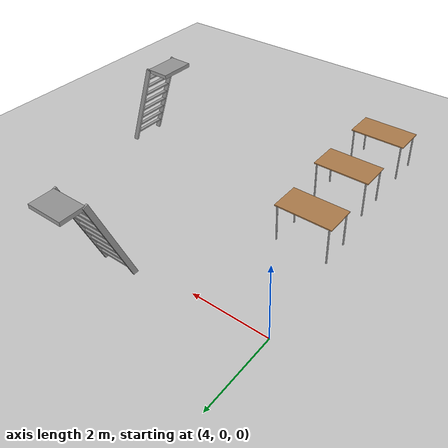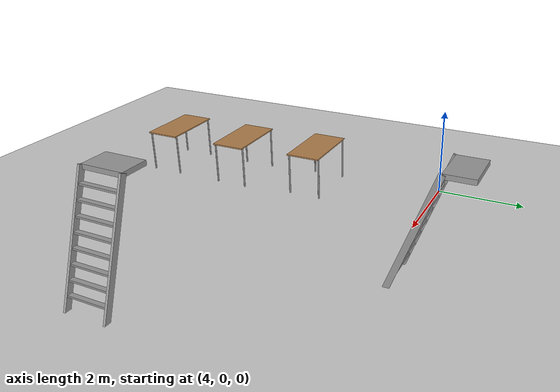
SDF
<sdf version="1.6">
 <world name="default">
  <model name="ground_plane">
   <static>1</static>
   <link name="link">
    <collision name="collision">
     <geometry><plane><normal>0 0 1</normal><size>100 100</size></plane></geometry>
     <surface><friction><ode><mu>100</mu><mu2>50</mu2></ode></friction></surface>
    </collision>
    <visual name="visual">
     <cast_shadows>0</cast_shadows>
     <geometry><plane><normal>0 0 1</normal><size>100 100</size></plane></geometry>
     <material>
      <script><uri>file://media/materials/scripts/gazebo.material</uri><name>Gazebo/Grey</name></script>
     </material>
    </visual>
   </link>
  </model>
  <model name="table_clone">
   <static>1</static>
   <link name="link">
    <collision name="surface">
     <pose>0 0 1 0 -0 0</pose>
     <geometry><box><size>1.5 0.8 0.03</size></box></geometry>
     <surface><friction><ode><mu>0.6</mu><mu2>0.6</mu2></ode></friction></surface>
    </collision>
    <visual name="visual1">
     <pose>0 0 1 0 -0 0</pose>
     <geometry><box><size>1.5 0.8 0.03</size></box></geometry>
     <material>
      <script><uri>file://media/materials/scripts/gazebo.material</uri><name>Gazebo/Wood</name></script>
     </material>
    </visual>
    <collision name="front_left_leg">
     <pose>0.68 0.38 0.5 0 -0 0</pose>
     <geometry><cylinder><radius>0.02</radius><length>1</length></cylinder></geometry>
    </collision>
    <visual name="front_left_leg">
     <pose>0.68 0.38 0.5 0 -0 0</pose>
     <geometry><cylinder><radius>0.02</radius><length>1</length></cylinder></geometry>
     <material>
      <script><uri>file://media/materials/scripts/gazebo.material</uri><name>Gazebo/Grey</name></script>
     </material>
    </visual>
    <collision name="front_right_leg">
     <pose>0.68 -0.38 0.5 0 -0 0</pose>
     <geometry><cylinder><radius>0.02</radius><length>1</length></cylinder></geometry>
    </collision>
    <visual name="front_right_leg">
     <pose>0.68 -0.38 0.5 0 -0 0</pose>
     <geometry><cylinder><radius>0.02</radius><length>1</length></cylinder></geometry>
     <material>
      <script><uri>file://media/materials/scripts/gazebo.material</uri><name>Gazebo/Grey</name></script>
     </material>
    </visual>
    <collision name="back_right_leg">
     <pose>-0.68 -0.38 0.5 0 -0 0</pose>
     <geometry><cylinder><radius>0.02</radius><length>1</length></cylinder></geometry>
    </collision>
    <visual name="back_right_leg">
     <pose>-0.68 -0.38 0.5 0 -0 0</pose>
     <geometry><cylinder><radius>0.02</radius><length>1</length></cylinder></geometry>
     <material>
      <script><uri>file://media/materials/scripts/gazebo.material</uri><name>Gazebo/Grey</name></script>
     </material>
    </visual>
    <collision name="back_left_leg">
     <pose>-0.68 0.38 0.5 0 -0 0</pose>
     <geometry><cylinder><radius>0.02</radius><length>1</length></cylinder></geometry>
    </collision>
    <visual name="back_left_leg">
     <pose>-0.68 0.38 0.5 0 -0 0</pose>
     <geometry><cylinder><radius>0.02</radius><length>1</length></cylinder></geometry>
     <material>
      <script><uri>file://media/materials/scripts/gazebo.material</uri><name>Gazebo/Grey</name></script>
     </material>
    </visual>
   </link>
   <pose>4.87292 -2.84423 0 0 -0 0</pose>
  </model>
  <model name="table_clone_0">
   <static>1</static>
   <link name="link">
    <collision name="surface">
     <pose>0 0 1 0 -0 0</pose>
     <geometry><box><size>1.5 0.8 0.03</size></box></geometry>
     <surface><friction><ode><mu>0.6</mu><mu2>0.6</mu2></ode></friction></surface>
    </collision>
    <visual name="visual1">
     <pose>0 0 1 0 -0 0</pose>
     <geometry><box><size>1.5 0.8 0.03</size></box></geometry>
     <material>
      <script><uri>file://media/materials/scripts/gazebo.material</uri><name>Gazebo/Wood</name></script>
     </material>
    </visual>
    <collision name="front_left_leg">
     <pose>0.68 0.38 0.5 0 -0 0</pose>
     <geometry><cylinder><radius>0.02</radius><length>1</length></cylinder></geometry>
    </collision>
    <visual name="front_left_leg">
     <pose>0.68 0.38 0.5 0 -0 0</pose>
     <geometry><cylinder><radius>0.02</radius><length>1</length></cylinder></geometry>
     <material>
      <script><uri>file://media/materials/scripts/gazebo.material</uri><name>Gazebo/Grey</name></script>
     </material>
    </visual>
    <collision name="front_right_leg">
     <pose>0.68 -0.38 0.5 0 -0 0</pose>
     <geometry><cylinder><radius>0.02</radius><length>1</length></cylinder></geometry>
    </collision>
    <visual name="front_right_leg">
     <pose>0.68 -0.38 0.5 0 -0 0</pose>
     <geometry><cylinder><radius>0.02</radius><length>1</length></cylinder></geometry>
     <material>
      <script><uri>file://media/materials/scripts/gazebo.material</uri><name>Gazebo/Grey</name></script>
     </material>
    </visual>
    <collision name="back_right_leg">
     <pose>-0.68 -0.38 0.5 0 -0 0</pose>
     <geometry><cylinder><radius>0.02</radius><length>1</length></cylinder></geometry>
    </collision>
    <visual name="back_right_leg">
     <pose>-0.68 -0.38 0.5 0 -0 0</pose>
     <geometry><cylinder><radius>0.02</radius><length>1</length></cylinder></geometry>
     <material>
      <script><uri>file://media/materials/scripts/gazebo.material</uri><name>Gazebo/Grey</name></script>
     </material>
    </visual>
    <collision name="back_left_leg">
     <pose>-0.68 0.38 0.5 0 -0 0</pose>
     <geometry><cylinder><radius>0.02</radius><length>1</length></cylinder></geometry>
    </collision>
    <visual name="back_left_leg">
     <pose>-0.68 0.38 0.5 0 -0 0</pose>
     <geometry><cylinder><radius>0.02</radius><length>1</length></cylinder></geometry>
     <material>
      <script><uri>file://media/materials/scripts/gazebo.material</uri><name>Gazebo/Grey</name></script>
     </material>
    </visual>
   </link>
   <pose>5.02901 -4.78324 0 0 -0 0</pose>
  </model>
  <model name="table_clone_1">
   <static>1</static>
   <link name="link">
    <collision name="surface">
     <pose>0 0 1 0 -0 0</pose>
     <geometry><box><size>1.5 0.8 0.03</size></box></geometry>
     <surface><friction><ode><mu>0.6</mu><mu2>0.6</mu2></ode></friction></surface>
    </collision>
    <visual name="visual1">
     <pose>0 0 1 0 -0 0</pose>
     <geometry><box><size>1.5 0.8 0.03</size></box></geometry>
     <material>
      <script><uri>file://media/materials/scripts/gazebo.material</uri><name>Gazebo/Wood</name></script>
     </material>
    </visual>
    <collision name="front_left_leg">
     <pose>0.68 0.38 0.5 0 -0 0</pose>
     <geometry><cylinder><radius>0.02</radius><length>1</length></cylinder></geometry>
    </collision>
    <visual name="front_left_leg">
     <pose>0.68 0.38 0.5 0 -0 0</pose>
     <geometry><cylinder><radius>0.02</radius><length>1</length></cylinder></geometry>
     <material>
      <script><uri>file://media/materials/scripts/gazebo.material</uri><name>Gazebo/Grey</name></script>
     </material>
    </visual>
    <collision name="front_right_leg">
     <pose>0.68 -0.38 0.5 0 -0 0</pose>
     <geometry><cylinder><radius>0.02</radius><length>1</length></cylinder></geometry>
    </collision>
    <visual name="front_right_leg">
     <pose>0.68 -0.38 0.5 0 -0 0</pose>
     <geometry><cylinder><radius>0.02</radius><length>1</length></cylinder></geometry>
     <material>
      <script><uri>file://media/materials/scripts/gazebo.material</uri><name>Gazebo/Grey</name></script>
     </material>
    </visual>
    <collision name="back_right_leg">
     <pose>-0.68 -0.38 0.5 0 -0 0</pose>
     <geometry><cylinder><radius>0.02</radius><length>1</length></cylinder></geometry>
    </collision>
    <visual name="back_right_leg">
     <pose>-0.68 -0.38 0.5 0 -0 0</pose>
     <geometry><cylinder><radius>0.02</radius><length>1</length></cylinder></geometry>
     <material>
      <script><uri>file://media/materials/scripts/gazebo.material</uri><name>Gazebo/Grey</name></script>
     </material>
    </visual>
    <collision name="back_left_leg">
     <pose>-0.68 0.38 0.5 0 -0 0</pose>
     <geometry><cylinder><radius>0.02</radius><length>1</length></cylinder></geometry>
    </collision>
    <visual name="back_left_leg">
     <pose>-0.68 0.38 0.5 0 -0 0</pose>
     <geometry><cylinder><radius>0.02</radius><length>1</length></cylinder></geometry>
     <material>
      <script><uri>file://media/materials/scripts/gazebo.material</uri><name>Gazebo/Grey</name></script>
     </material>
    </visual>
   </link>
   <pose>5.0413 -6.6954 0 0 -0 0</pose>
  </model>
  <model name="ladder_70deg_0rails_clone">
   <static>1</static>
   <link name="step0">
    <pose>0 0.097059 0.266667 0 -0 0</pose>
    <inertial>
     <mass>9.75482</mass>
     <inertia>
      <ixx>0.00957124</ixx>
      <iyy>0.65963</iyy>
      <izz>0.666842</izz>
      <ixy>0</ixy>
      <ixz>0</ixz>
      <iyz>0</iyz>
     </inertia>
    </inertial>
    <collision name="collision"><geometry><box><size>0.9 0.1016 0.0381</size></box></geometry></collision>
    <visual name="visual">
     <geometry><box><size>0.9 0.1016 0.0381</size></box></geometry>
     <material>
      <script><uri>file://media/materials/scripts/gazebo.material</uri><name>Gazebo/Grey</name></script>
     </material>
    </visual>
   </link>
   <link name="step1">
    <pose>0 0.194117 0.533333 0 -0 0</pose>
    <inertial>
     <mass>9.75482</mass>
     <inertia>
      <ixx>0.00957124</ixx>
      <iyy>0.65963</iyy>
      <izz>0.666842</izz>
      <ixy>0</ixy>
      <ixz>0</ixz>
      <iyz>0</iyz>
     </inertia>
    </inertial>
    <collision name="collision"><geometry><box><size>0.9 0.1016 0.0381</size></box></geometry></collision>
    <visual name="visual">
     <geometry><box><size>0.9 0.1016 0.0381</size></box></geometry>
     <material>
      <script><uri>file://media/materials/scripts/gazebo.material</uri><name>Gazebo/Grey</name></script>
     </material>
    </visual>
   </link>
   <link name="step2">
    <pose>0 0.291176 0.8 0 -0 0</pose>
    <inertial>
     <mass>9.75482</mass>
     <inertia>
      <ixx>0.00957124</ixx>
      <iyy>0.65963</iyy>
      <izz>0.666842</izz>
      <ixy>0</ixy>
      <ixz>0</ixz>
      <iyz>0</iyz>
     </inertia>
    </inertial>
    <collision name="collision"><geometry><box><size>0.9 0.1016 0.0381</size></box></geometry></collision>
    <visual name="visual">
     <geometry><box><size>0.9 0.1016 0.0381</size></box></geometry>
     <material>
      <script><uri>file://media/materials/scripts/gazebo.material</uri><name>Gazebo/Grey</name></script>
     </material>
    </visual>
   </link>
   <link name="step3">
    <pose>0 0.388235 1.06667 0 -0 0</pose>
    <inertial>
     <mass>9.75482</mass>
     <inertia>
      <ixx>0.00957124</ixx>
      <iyy>0.65963</iyy>
      <izz>0.666842</izz>
      <ixy>0</ixy>
      <ixz>0</ixz>
      <iyz>0</iyz>
     </inertia>
    </inertial>
    <collision name="collision"><geometry><box><size>0.9 0.1016 0.0381</size></box></geometry></collision>
    <visual name="visual">
     <geometry><box><size>0.9 0.1016 0.0381</size></box></geometry>
     <material>
      <script><uri>file://media/materials/scripts/gazebo.material</uri><name>Gazebo/Grey</name></script>
     </material>
    </visual>
   </link>
   <link name="step4">
    <pose>0 0.485294 1.33333 0 -0 0</pose>
    <inertial>
     <mass>9.75482</mass>
     <inertia>
      <ixx>0.00957124</ixx>
      <iyy>0.65963</iyy>
      <izz>0.666842</izz>
      <ixy>0</ixy>
      <ixz>0</ixz>
      <iyz>0</iyz>
     </inertia>
    </inertial>
    <collision name="collision"><geometry><box><size>0.9 0.1016 0.0381</size></box></geometry></collision>
    <visual name="visual">
     <geometry><box><size>0.9 0.1016 0.0381</size></box></geometry>
     <material>
      <script><uri>file://media/materials/scripts/gazebo.material</uri><name>Gazebo/Grey</name></script>
     </material>
    </visual>
   </link>
   <link name="step5">
    <pose>0 0.582352 1.6 0 -0 0</pose>
    <inertial>
     <mass>9.75482</mass>
     <inertia>
      <ixx>0.00957124</ixx>
      <iyy>0.65963</iyy>
      <izz>0.666842</izz>
      <ixy>0</ixy>
      <ixz>0</ixz>
      <iyz>0</iyz>
     </inertia>
    </inertial>
    <collision name="collision"><geometry><box><size>0.9 0.1016 0.0381</size></box></geometry></collision>
    <visual name="visual">
     <geometry><box><size>0.9 0.1016 0.0381</size></box></geometry>
     <material>
      <script><uri>file://media/materials/scripts/gazebo.material</uri><name>Gazebo/Grey</name></script>
     </material>
    </visual>
   </link>
   <link name="step6">
    <pose>0 0.679411 1.86667 0 -0 0</pose>
    <inertial>
     <mass>9.75482</mass>
     <inertia>
      <ixx>0.00957124</ixx>
      <iyy>0.65963</iyy>
      <izz>0.666842</izz>
      <ixy>0</ixy>
      <ixz>0</ixz>
      <iyz>0</iyz>
     </inertia>
    </inertial>
    <collision name="collision"><geometry><box><size>0.9 0.1016 0.0381</size></box></geometry></collision>
    <visual name="visual">
     <geometry><box><size>0.9 0.1016 0.0381</size></box></geometry>
     <material>
      <script><uri>file://media/materials/scripts/gazebo.material</uri><name>Gazebo/Grey</name></script>
     </material>
    </visual>
   </link>
   <link name="step7">
    <pose>0 0.77647 2.13333 0 -0 0</pose>
    <inertial>
     <mass>9.75482</mass>
     <inertia>
      <ixx>0.00957124</ixx>
      <iyy>0.65963</iyy>
      <izz>0.666842</izz>
      <ixy>0</ixy>
      <ixz>0</ixz>
      <iyz>0</iyz>
     </inertia>
    </inertial>
    <collision name="collision"><geometry><box><size>0.9 0.1016 0.0381</size></box></geometry></collision>
    <visual name="visual">
     <geometry><box><size>0.9 0.1016 0.0381</size></box></geometry>
     <material>
      <script><uri>file://media/materials/scripts/gazebo.material</uri><name>Gazebo/Grey</name></script>
     </material>
    </visual>
   </link>
   <link name="landing">
    <pose>0 1.17353 2.4 0 -0 0</pose>
    <inertial>
     <mass>57.6072</mass>
     <inertia><ixx>1.73518</ixx><iyy>3.89545</iyy><izz>5.6167</izz><ixy>0</ixy><ixz>0</ixz><iyz>0</iyz></inertia>
    </inertial>
    <collision name="collision"><geometry><box><size>0.9 0.6 0.1016</size></box></geometry></collision>
    <visual name="visual">
     <geometry><box><size>0.9 0.6 0.1016</size></box></geometry>
     <material>
      <script><uri>file://media/materials/scripts/gazebo.material</uri><name>Gazebo/Grey</name></script>
     </material>
    </visual>
   </link>
   <link name="left_side_wall">
    <pose>-0.45 0.436764 1.2 1.22173 -0 0</pose>
    <collision name="collision"><geometry><box><size>0.0508 2.63403 0.13</size></box></geometry></collision>
    <visual name="visual">
     <geometry><box><size>0.0508 2.63403 0.13</size></box></geometry>
     <material>
      <script><uri>file://media/materials/scripts/gazebo.material</uri><name>Gazebo/Grey</name></script>
     </material>
    </visual>
   </link>
   <link name="right_side_wall">
    <pose>0.45 0.436764 1.2 1.22173 -0 0</pose>
    <collision name="collision"><geometry><box><size>0.0508 2.63403 0.13</size></box></geometry></collision>
    <visual name="visual">
     <geometry><box><size>0.0508 2.63403 0.13</size></box></geometry>
     <material>
      <script><uri>file://media/materials/scripts/gazebo.material</uri><name>Gazebo/Grey</name></script>
     </material>
    </visual>
   </link>
   <pose>7.88326 0.272475 0 0 -0 0</pose>
  </model>
  <model name="ladder_70deg_0rails_clone_clone">
   <static>1</static>
   <link name="step0">
    <pose>0 0.097059 0.266667 0 -0 0</pose>
    <inertial>
     <mass>9.75482</mass>
     <inertia>
      <ixx>0.00957124</ixx>
      <iyy>0.65963</iyy>
      <izz>0.666842</izz>
      <ixy>0</ixy>
      <ixz>0</ixz>
      <iyz>0</iyz>
     </inertia>
    </inertial>
    <collision name="collision"><geometry><box><size>0.9 0.1016 0.0381</size></box></geometry></collision>
    <visual name="visual">
     <geometry><box><size>0.9 0.1016 0.0381</size></box></geometry>
     <material>
      <script><uri>file://media/materials/scripts/gazebo.material</uri><name>Gazebo/Grey</name></script>
     </material>
    </visual>
   </link>
   <link name="step1">
    <pose>0 0.194117 0.533333 0 -0 0</pose>
    <inertial>
     <mass>9.75482</mass>
     <inertia>
      <ixx>0.00957124</ixx>
      <iyy>0.65963</iyy>
      <izz>0.666842</izz>
      <ixy>0</ixy>
      <ixz>0</ixz>
      <iyz>0</iyz>
     </inertia>
    </inertial>
    <collision name="collision"><geometry><box><size>0.9 0.1016 0.0381</size></box></geometry></collision>
    <visual name="visual">
     <geometry><box><size>0.9 0.1016 0.0381</size></box></geometry>
     <material>
      <script><uri>file://media/materials/scripts/gazebo.material</uri><name>Gazebo/Grey</name></script>
     </material>
    </visual>
   </link>
   <link name="step2">
    <pose>0 0.291176 0.8 0 -0 0</pose>
    <inertial>
     <mass>9.75482</mass>
     <inertia>
      <ixx>0.00957124</ixx>
      <iyy>0.65963</iyy>
      <izz>0.666842</izz>
      <ixy>0</ixy>
      <ixz>0</ixz>
      <iyz>0</iyz>
     </inertia>
    </inertial>
    <collision name="collision"><geometry><box><size>0.9 0.1016 0.0381</size></box></geometry></collision>
    <visual name="visual">
     <geometry><box><size>0.9 0.1016 0.0381</size></box></geometry>
     <material>
      <script><uri>file://media/materials/scripts/gazebo.material</uri><name>Gazebo/Grey</name></script>
     </material>
    </visual>
   </link>
   <link name="step3">
    <pose>0 0.388235 1.06667 0 -0 0</pose>
    <inertial>
     <mass>9.75482</mass>
     <inertia>
      <ixx>0.00957124</ixx>
      <iyy>0.65963</iyy>
      <izz>0.666842</izz>
      <ixy>0</ixy>
      <ixz>0</ixz>
      <iyz>0</iyz>
     </inertia>
    </inertial>
    <collision name="collision"><geometry><box><size>0.9 0.1016 0.0381</size></box></geometry></collision>
    <visual name="visual">
     <geometry><box><size>0.9 0.1016 0.0381</size></box></geometry>
     <material>
      <script><uri>file://media/materials/scripts/gazebo.material</uri><name>Gazebo/Grey</name></script>
     </material>
    </visual>
   </link>
   <link name="step4">
    <pose>0 0.485294 1.33333 0 -0 0</pose>
    <inertial>
     <mass>9.75482</mass>
     <inertia>
      <ixx>0.00957124</ixx>
      <iyy>0.65963</iyy>
      <izz>0.666842</izz>
      <ixy>0</ixy>
      <ixz>0</ixz>
      <iyz>0</iyz>
     </inertia>
    </inertial>
    <collision name="collision"><geometry><box><size>0.9 0.1016 0.0381</size></box></geometry></collision>
    <visual name="visual">
     <geometry><box><size>0.9 0.1016 0.0381</size></box></geometry>
     <material>
      <script><uri>file://media/materials/scripts/gazebo.material</uri><name>Gazebo/Grey</name></script>
     </material>
    </visual>
   </link>
   <link name="step5">
    <pose>0 0.582352 1.6 0 -0 0</pose>
    <inertial>
     <mass>9.75482</mass>
     <inertia>
      <ixx>0.00957124</ixx>
      <iyy>0.65963</iyy>
      <izz>0.666842</izz>
      <ixy>0</ixy>
      <ixz>0</ixz>
      <iyz>0</iyz>
     </inertia>
    </inertial>
    <collision name="collision"><geometry><box><size>0.9 0.1016 0.0381</size></box></geometry></collision>
    <visual name="visual">
     <geometry><box><size>0.9 0.1016 0.0381</size></box></geometry>
     <material>
      <script><uri>file://media/materials/scripts/gazebo.material</uri><name>Gazebo/Grey</name></script>
     </material>
    </visual>
   </link>
   <link name="step6">
    <pose>0 0.679411 1.86667 0 -0 0</pose>
    <inertial>
     <mass>9.75482</mass>
     <inertia>
      <ixx>0.00957124</ixx>
      <iyy>0.65963</iyy>
      <izz>0.666842</izz>
      <ixy>0</ixy>
      <ixz>0</ixz>
      <iyz>0</iyz>
     </inertia>
    </inertial>
    <collision name="collision"><geometry><box><size>0.9 0.1016 0.0381</size></box></geometry></collision>
    <visual name="visual">
     <geometry><box><size>0.9 0.1016 0.0381</size></box></geometry>
     <material>
      <script><uri>file://media/materials/scripts/gazebo.material</uri><name>Gazebo/Grey</name></script>
     </material>
    </visual>
   </link>
   <link name="step7">
    <pose>0 0.77647 2.13333 0 -0 0</pose>
    <inertial>
     <mass>9.75482</mass>
     <inertia>
      <ixx>0.00957124</ixx>
      <iyy>0.65963</iyy>
      <izz>0.666842</izz>
      <ixy>0</ixy>
      <ixz>0</ixz>
      <iyz>0</iyz>
     </inertia>
    </inertial>
    <collision name="collision"><geometry><box><size>0.9 0.1016 0.0381</size></box></geometry></collision>
    <visual name="visual">
     <geometry><box><size>0.9 0.1016 0.0381</size></box></geometry>
     <material>
      <script><uri>file://media/materials/scripts/gazebo.material</uri><name>Gazebo/Grey</name></script>
     </material>
    </visual>
   </link>
   <link name="landing">
    <pose>0 1.17353 2.4 0 -0 0</pose>
    <inertial>
     <mass>57.6072</mass>
     <inertia><ixx>1.73518</ixx><iyy>3.89545</iyy><izz>5.6167</izz><ixy>0</ixy><ixz>0</ixz><iyz>0</iyz></inertia>
    </inertial>
    <collision name="collision"><geometry><box><size>0.9 0.6 0.1016</size></box></geometry></collision>
    <visual name="visual">
     <geometry><box><size>0.9 0.6 0.1016</size></box></geometry>
     <material>
      <script><uri>file://media/materials/scripts/gazebo.material</uri><name>Gazebo/Grey</name></script>
     </material>
    </visual>
   </link>
   <link name="left_side_wall">
    <pose>-0.45 0.436764 1.2 1.22173 -0 0</pose>
    <collision name="collision"><geometry><box><size>0.0508 2.63403 0.13</size></box></geometry></collision>
    <visual name="visual">
     <geometry><box><size>0.0508 2.63403 0.13</size></box></geometry>
     <material>
      <script><uri>file://media/materials/scripts/gazebo.material</uri><name>Gazebo/Grey</name></script>
     </material>
    </visual>
   </link>
   <link name="right_side_wall">
    <pose>0.45 0.436764 1.2 1.22173 -0 0</pose>
    <collision name="collision"><geometry><box><size>0.0508 2.63403 0.13</size></box></geometry></collision>
    <visual name="visual">
     <geometry><box><size>0.0508 2.63403 0.13</size></box></geometry>
     <material>
      <script><uri>file://media/materials/scripts/gazebo.material</uri><name>Gazebo/Grey</name></script>
     </material>
    </visual>
   </link>
   <pose>11.3604 -4.08919 -0 0 -0 1.55803</pose>
  </model>
 </world>
</sdf>
